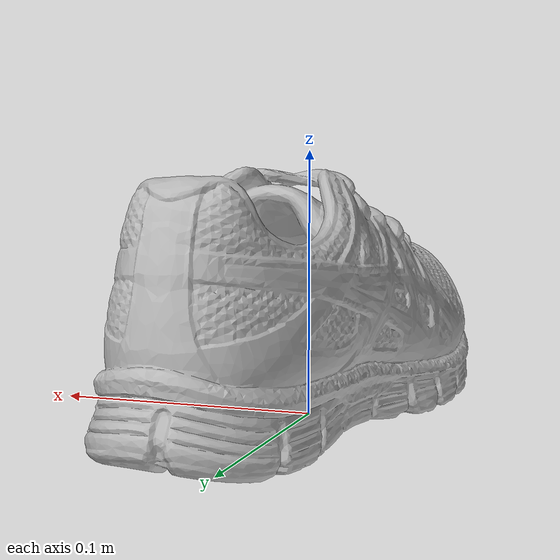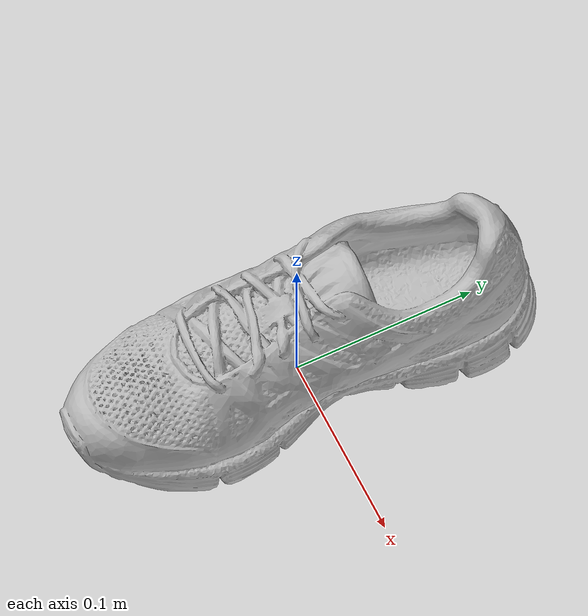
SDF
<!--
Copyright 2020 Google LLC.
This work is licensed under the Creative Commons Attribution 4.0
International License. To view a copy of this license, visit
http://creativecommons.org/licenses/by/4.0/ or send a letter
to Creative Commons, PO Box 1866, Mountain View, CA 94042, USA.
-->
<?xml version="1.0" ?>
<sdf version="1.6">
  <model name="ASICS_GELBlur33_20_GS_BlackWhiteSafety_Orange">
    <link name="link_0">
      <visual name="visual">
        <geometry>
          <mesh>
            <uri>meshes/model.obj</uri>
          </mesh>
        </geometry>
      </visual>
      <collision name="collision_0">
        <geometry>
          <mesh>
            <uri>meshes/model.obj</uri>
          </mesh>
        </geometry>
      </collision>
    </link>
  </model>
</sdf>
